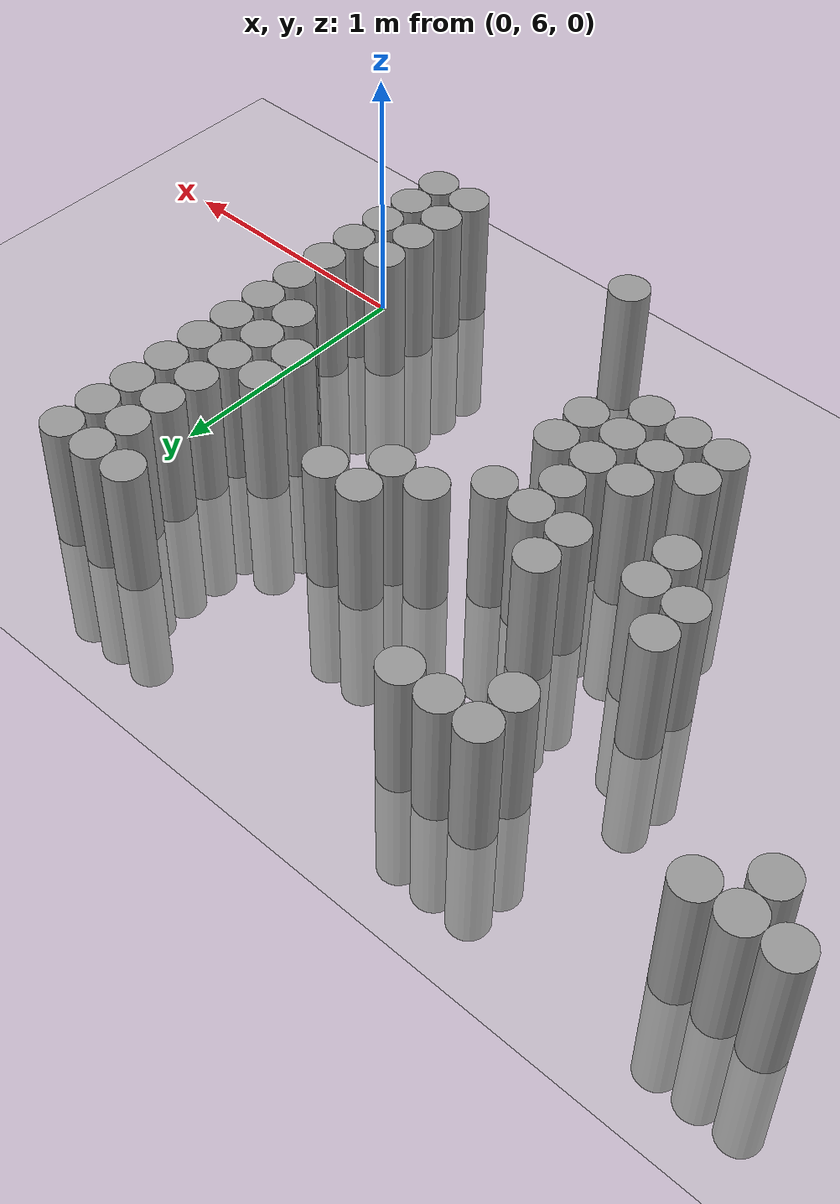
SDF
<sdf version="1.6">
 <world name="default">
  <model name="ground_plane">
   <static>1</static>
   <static>1</static>
   <link name="link">
    <collision name="collision">
     <geometry><plane><normal>0 0 1</normal><size>100 100</size></plane></geometry>
     <surface><friction><ode><mu>100</mu><mu2>50</mu2></ode></friction></surface>
    </collision>
    <visual name="visual">
     <cast_shadows>0</cast_shadows>
     <geometry><plane><normal>0 0 1</normal><size>100 100</size></plane></geometry>
     <material>
      <script><uri>file://media/materials/scripts/gazebo.material</uri><name>Gazebo/Grey</name></script>
     </material>
    </visual>
   </link>
  </model>
  <model name="unit_cylinder_168">
   <static>1</static>
   <pose>-2.925000 7.575000 0.000000 0.000000 0.000000 0.000000</pose>
   <link name="link">
    <inertial>
     <mass>1</mass>
     <inertia><ixx>0.145833</ixx><ixy>0</ixy><ixz>0</ixz><iyy>0.145833</iyy><iyz>0</iyz><izz>0.125</izz></inertia>
    </inertial>
    <collision name="collision">
     <geometry><cylinder><radius>0.075000</radius><length>1</length></cylinder></geometry>
    </collision>
    <visual name="visual">
     <geometry><cylinder><radius>0.075000</radius><length>1</length></cylinder></geometry>
     <material>
      <script><name>Gazebo/Grey</name><uri>file://media/materials/scripts/gazebo.material</uri></script>
     </material>
    </visual>
   </link>
  </model>
  <model name="unit_cylinder_174">
   <static>1</static>
   <pose>-2.775000 7.425000 0.000000 0.000000 0.000000 0.000000</pose>
   <link name="link">
    <inertial>
     <mass>1</mass>
     <inertia><ixx>0.145833</ixx><ixy>0</ixy><ixz>0</ixz><iyy>0.145833</iyy><iyz>0</iyz><izz>0.125</izz></inertia>
    </inertial>
    <collision name="collision">
     <geometry><cylinder><radius>0.075000</radius><length>1</length></cylinder></geometry>
    </collision>
    <visual name="visual">
     <geometry><cylinder><radius>0.075000</radius><length>1</length></cylinder></geometry>
     <material>
      <script><name>Gazebo/Grey</name><uri>file://media/materials/scripts/gazebo.material</uri></script>
     </material>
    </visual>
   </link>
  </model>
  <model name="unit_cylinder_175">
   <static>1</static>
   <pose>-2.775000 7.575000 0.000000 0.000000 0.000000 0.000000</pose>
   <link name="link">
    <inertial>
     <mass>1</mass>
     <inertia><ixx>0.145833</ixx><ixy>0</ixy><ixz>0</ixz><iyy>0.145833</iyy><iyz>0</iyz><izz>0.125</izz></inertia>
    </inertial>
    <collision name="collision">
     <geometry><cylinder><radius>0.075000</radius><length>1</length></cylinder></geometry>
    </collision>
    <visual name="visual">
     <geometry><cylinder><radius>0.075000</radius><length>1</length></cylinder></geometry>
     <material>
      <script><name>Gazebo/Grey</name><uri>file://media/materials/scripts/gazebo.material</uri></script>
     </material>
    </visual>
   </link>
  </model>
  <model name="unit_cylinder_181">
   <static>1</static>
   <pose>-2.625000 7.575000 0.000000 0.000000 0.000000 0.000000</pose>
   <link name="link">
    <inertial>
     <mass>1</mass>
     <inertia><ixx>0.145833</ixx><ixy>0</ixy><ixz>0</ixz><iyy>0.145833</iyy><iyz>0</iyz><izz>0.125</izz></inertia>
    </inertial>
    <collision name="collision">
     <geometry><cylinder><radius>0.075000</radius><length>1</length></cylinder></geometry>
    </collision>
    <visual name="visual">
     <geometry><cylinder><radius>0.075000</radius><length>1</length></cylinder></geometry>
     <material>
      <script><name>Gazebo/Grey</name><uri>file://media/materials/scripts/gazebo.material</uri></script>
     </material>
    </visual>
   </link>
  </model>
  <model name="unit_cylinder_195">
   <static>1</static>
   <pose>-2.025000 6.825000 0.000000 0.000000 0.000000 0.000000</pose>
   <link name="link">
    <inertial>
     <mass>1</mass>
     <inertia><ixx>0.145833</ixx><ixy>0</ixy><ixz>0</ixz><iyy>0.145833</iyy><iyz>0</iyz><izz>0.125</izz></inertia>
    </inertial>
    <collision name="collision">
     <geometry><cylinder><radius>0.075000</radius><length>1</length></cylinder></geometry>
    </collision>
    <visual name="visual">
     <geometry><cylinder><radius>0.075000</radius><length>1</length></cylinder></geometry>
     <material>
      <script><name>Gazebo/Grey</name><uri>file://media/materials/scripts/gazebo.material</uri></script>
     </material>
    </visual>
   </link>
  </model>
  <model name="unit_cylinder_196">
   <static>1</static>
   <pose>-2.025000 6.975000 0.000000 0.000000 0.000000 0.000000</pose>
   <link name="link">
    <inertial>
     <mass>1</mass>
     <inertia><ixx>0.145833</ixx><ixy>0</ixy><ixz>0</ixz><iyy>0.145833</iyy><iyz>0</iyz><izz>0.125</izz></inertia>
    </inertial>
    <collision name="collision">
     <geometry><cylinder><radius>0.075000</radius><length>1</length></cylinder></geometry>
    </collision>
    <visual name="visual">
     <geometry><cylinder><radius>0.075000</radius><length>1</length></cylinder></geometry>
     <material>
      <script><name>Gazebo/Grey</name><uri>file://media/materials/scripts/gazebo.material</uri></script>
     </material>
    </visual>
   </link>
  </model>
  <model name="unit_cylinder_199">
   <static>1</static>
   <pose>-1.875000 6.675000 0.000000 0.000000 0.000000 0.000000</pose>
   <link name="link">
    <inertial>
     <mass>1</mass>
     <inertia><ixx>0.145833</ixx><ixy>0</ixy><ixz>0</ixz><iyy>0.145833</iyy><iyz>0</iyz><izz>0.125</izz></inertia>
    </inertial>
    <collision name="collision">
     <geometry><cylinder><radius>0.075000</radius><length>1</length></cylinder></geometry>
    </collision>
    <visual name="visual">
     <geometry><cylinder><radius>0.075000</radius><length>1</length></cylinder></geometry>
     <material>
      <script><name>Gazebo/Grey</name><uri>file://media/materials/scripts/gazebo.material</uri></script>
     </material>
    </visual>
   </link>
  </model>
  <model name="unit_cylinder_200">
   <static>1</static>
   <pose>-1.875000 6.825000 0.000000 0.000000 0.000000 0.000000</pose>
   <link name="link">
    <inertial>
     <mass>1</mass>
     <inertia><ixx>0.145833</ixx><ixy>0</ixy><ixz>0</ixz><iyy>0.145833</iyy><iyz>0</iyz><izz>0.125</izz></inertia>
    </inertial>
    <collision name="collision">
     <geometry><cylinder><radius>0.075000</radius><length>1</length></cylinder></geometry>
    </collision>
    <visual name="visual">
     <geometry><cylinder><radius>0.075000</radius><length>1</length></cylinder></geometry>
     <material>
      <script><name>Gazebo/Grey</name><uri>file://media/materials/scripts/gazebo.material</uri></script>
     </material>
    </visual>
   </link>
  </model>
  <model name="unit_cylinder_201">
   <static>1</static>
   <pose>-1.875000 7.425000 0.000000 0.000000 0.000000 0.000000</pose>
   <link name="link">
    <inertial>
     <mass>1</mass>
     <inertia><ixx>0.145833</ixx><ixy>0</ixy><ixz>0</ixz><iyy>0.145833</iyy><iyz>0</iyz><izz>0.125</izz></inertia>
    </inertial>
    <collision name="collision">
     <geometry><cylinder><radius>0.075000</radius><length>1</length></cylinder></geometry>
    </collision>
    <visual name="visual">
     <geometry><cylinder><radius>0.075000</radius><length>1</length></cylinder></geometry>
     <material>
      <script><name>Gazebo/Grey</name><uri>file://media/materials/scripts/gazebo.material</uri></script>
     </material>
    </visual>
   </link>
  </model>
  <model name="unit_cylinder_202">
   <static>1</static>
   <pose>-1.875000 7.575000 0.000000 0.000000 0.000000 0.000000</pose>
   <link name="link">
    <inertial>
     <mass>1</mass>
     <inertia><ixx>0.145833</ixx><ixy>0</ixy><ixz>0</ixz><iyy>0.145833</iyy><iyz>0</iyz><izz>0.125</izz></inertia>
    </inertial>
    <collision name="collision">
     <geometry><cylinder><radius>0.075000</radius><length>1</length></cylinder></geometry>
    </collision>
    <visual name="visual">
     <geometry><cylinder><radius>0.075000</radius><length>1</length></cylinder></geometry>
     <material>
      <script><name>Gazebo/Grey</name><uri>file://media/materials/scripts/gazebo.material</uri></script>
     </material>
    </visual>
   </link>
  </model>
  <model name="unit_cylinder_204">
   <static>1</static>
   <pose>-1.725000 6.225000 0.000000 0.000000 0.000000 0.000000</pose>
   <link name="link">
    <inertial>
     <mass>1</mass>
     <inertia><ixx>0.145833</ixx><ixy>0</ixy><ixz>0</ixz><iyy>0.145833</iyy><iyz>0</iyz><izz>0.125</izz></inertia>
    </inertial>
    <collision name="collision">
     <geometry><cylinder><radius>0.075000</radius><length>1</length></cylinder></geometry>
    </collision>
    <visual name="visual">
     <geometry><cylinder><radius>0.075000</radius><length>1</length></cylinder></geometry>
     <material>
      <script><name>Gazebo/Grey</name><uri>file://media/materials/scripts/gazebo.material</uri></script>
     </material>
    </visual>
   </link>
  </model>
  <model name="unit_cylinder_205">
   <static>1</static>
   <pose>-1.725000 6.375000 0.000000 0.000000 0.000000 0.000000</pose>
   <link name="link">
    <inertial>
     <mass>1</mass>
     <inertia><ixx>0.145833</ixx><ixy>0</ixy><ixz>0</ixz><iyy>0.145833</iyy><iyz>0</iyz><izz>0.125</izz></inertia>
    </inertial>
    <collision name="collision">
     <geometry><cylinder><radius>0.075000</radius><length>1</length></cylinder></geometry>
    </collision>
    <visual name="visual">
     <geometry><cylinder><radius>0.075000</radius><length>1</length></cylinder></geometry>
     <material>
      <script><name>Gazebo/Grey</name><uri>file://media/materials/scripts/gazebo.material</uri></script>
     </material>
    </visual>
   </link>
  </model>
  <model name="unit_cylinder_206">
   <static>1</static>
   <pose>-1.725000 7.575000 0.000000 0.000000 0.000000 0.000000</pose>
   <link name="link">
    <inertial>
     <mass>1</mass>
     <inertia><ixx>0.145833</ixx><ixy>0</ixy><ixz>0</ixz><iyy>0.145833</iyy><iyz>0</iyz><izz>0.125</izz></inertia>
    </inertial>
    <collision name="collision">
     <geometry><cylinder><radius>0.075000</radius><length>1</length></cylinder></geometry>
    </collision>
    <visual name="visual">
     <geometry><cylinder><radius>0.075000</radius><length>1</length></cylinder></geometry>
     <material>
      <script><name>Gazebo/Grey</name><uri>file://media/materials/scripts/gazebo.material</uri></script>
     </material>
    </visual>
   </link>
  </model>
  <model name="unit_cylinder_207">
   <static>1</static>
   <pose>-1.575000 6.225000 0.000000 0.000000 0.000000 0.000000</pose>
   <link name="link">
    <inertial>
     <mass>1</mass>
     <inertia><ixx>0.145833</ixx><ixy>0</ixy><ixz>0</ixz><iyy>0.145833</iyy><iyz>0</iyz><izz>0.125</izz></inertia>
    </inertial>
    <collision name="collision">
     <geometry><cylinder><radius>0.075000</radius><length>1</length></cylinder></geometry>
    </collision>
    <visual name="visual">
     <geometry><cylinder><radius>0.075000</radius><length>1</length></cylinder></geometry>
     <material>
      <script><name>Gazebo/Grey</name><uri>file://media/materials/scripts/gazebo.material</uri></script>
     </material>
    </visual>
   </link>
  </model>
  <model name="unit_cylinder_208">
   <static>1</static>
   <pose>-1.575000 6.375000 0.000000 0.000000 0.000000 0.000000</pose>
   <link name="link">
    <inertial>
     <mass>1</mass>
     <inertia><ixx>0.145833</ixx><ixy>0</ixy><ixz>0</ixz><iyy>0.145833</iyy><iyz>0</iyz><izz>0.125</izz></inertia>
    </inertial>
    <collision name="collision">
     <geometry><cylinder><radius>0.075000</radius><length>1</length></cylinder></geometry>
    </collision>
    <visual name="visual">
     <geometry><cylinder><radius>0.075000</radius><length>1</length></cylinder></geometry>
     <material>
      <script><name>Gazebo/Grey</name><uri>file://media/materials/scripts/gazebo.material</uri></script>
     </material>
    </visual>
   </link>
  </model>
  <model name="unit_cylinder_209">
   <static>1</static>
   <pose>-1.575000 6.525000 0.000000 0.000000 0.000000 0.000000</pose>
   <link name="link">
    <inertial>
     <mass>1</mass>
     <inertia><ixx>0.145833</ixx><ixy>0</ixy><ixz>0</ixz><iyy>0.145833</iyy><iyz>0</iyz><izz>0.125</izz></inertia>
    </inertial>
    <collision name="collision">
     <geometry><cylinder><radius>0.075000</radius><length>1</length></cylinder></geometry>
    </collision>
    <visual name="visual">
     <geometry><cylinder><radius>0.075000</radius><length>1</length></cylinder></geometry>
     <material>
      <script><name>Gazebo/Grey</name><uri>file://media/materials/scripts/gazebo.material</uri></script>
     </material>
    </visual>
   </link>
  </model>
  <model name="unit_cylinder_210">
   <static>1</static>
   <pose>-1.575000 6.825000 0.000000 0.000000 0.000000 0.000000</pose>
   <link name="link">
    <inertial>
     <mass>1</mass>
     <inertia><ixx>0.145833</ixx><ixy>0</ixy><ixz>0</ixz><iyy>0.145833</iyy><iyz>0</iyz><izz>0.125</izz></inertia>
    </inertial>
    <collision name="collision">
     <geometry><cylinder><radius>0.075000</radius><length>1</length></cylinder></geometry>
    </collision>
    <visual name="visual">
     <geometry><cylinder><radius>0.075000</radius><length>1</length></cylinder></geometry>
     <material>
      <script><name>Gazebo/Grey</name><uri>file://media/materials/scripts/gazebo.material</uri></script>
     </material>
    </visual>
   </link>
  </model>
  <model name="unit_cylinder_211">
   <static>1</static>
   <pose>-1.575000 6.975000 0.000000 0.000000 0.000000 0.000000</pose>
   <link name="link">
    <inertial>
     <mass>1</mass>
     <inertia><ixx>0.145833</ixx><ixy>0</ixy><ixz>0</ixz><iyy>0.145833</iyy><iyz>0</iyz><izz>0.125</izz></inertia>
    </inertial>
    <collision name="collision">
     <geometry><cylinder><radius>0.075000</radius><length>1</length></cylinder></geometry>
    </collision>
    <visual name="visual">
     <geometry><cylinder><radius>0.075000</radius><length>1</length></cylinder></geometry>
     <material>
      <script><name>Gazebo/Grey</name><uri>file://media/materials/scripts/gazebo.material</uri></script>
     </material>
    </visual>
   </link>
  </model>
  <model name="unit_cylinder_212">
   <static>1</static>
   <pose>-1.575000 7.575000 0.000000 0.000000 0.000000 0.000000</pose>
   <link name="link">
    <inertial>
     <mass>1</mass>
     <inertia><ixx>0.145833</ixx><ixy>0</ixy><ixz>0</ixz><iyy>0.145833</iyy><iyz>0</iyz><izz>0.125</izz></inertia>
    </inertial>
    <collision name="collision">
     <geometry><cylinder><radius>0.075000</radius><length>1</length></cylinder></geometry>
    </collision>
    <visual name="visual">
     <geometry><cylinder><radius>0.075000</radius><length>1</length></cylinder></geometry>
     <material>
      <script><name>Gazebo/Grey</name><uri>file://media/materials/scripts/gazebo.material</uri></script>
     </material>
    </visual>
   </link>
  </model>
  <model name="unit_cylinder_215">
   <static>1</static>
   <pose>-1.425000 6.225000 0.000000 0.000000 0.000000 0.000000</pose>
   <link name="link">
    <inertial>
     <mass>1</mass>
     <inertia><ixx>0.145833</ixx><ixy>0</ixy><ixz>0</ixz><iyy>0.145833</iyy><iyz>0</iyz><izz>0.125</izz></inertia>
    </inertial>
    <collision name="collision">
     <geometry><cylinder><radius>0.075000</radius><length>1</length></cylinder></geometry>
    </collision>
    <visual name="visual">
     <geometry><cylinder><radius>0.075000</radius><length>1</length></cylinder></geometry>
     <material>
      <script><name>Gazebo/Grey</name><uri>file://media/materials/scripts/gazebo.material</uri></script>
     </material>
    </visual>
   </link>
  </model>
  <model name="unit_cylinder_216">
   <static>1</static>
   <pose>-1.425000 6.375000 0.000000 0.000000 0.000000 0.000000</pose>
   <link name="link">
    <inertial>
     <mass>1</mass>
     <inertia><ixx>0.145833</ixx><ixy>0</ixy><ixz>0</ixz><iyy>0.145833</iyy><iyz>0</iyz><izz>0.125</izz></inertia>
    </inertial>
    <collision name="collision">
     <geometry><cylinder><radius>0.075000</radius><length>1</length></cylinder></geometry>
    </collision>
    <visual name="visual">
     <geometry><cylinder><radius>0.075000</radius><length>1</length></cylinder></geometry>
     <material>
      <script><name>Gazebo/Grey</name><uri>file://media/materials/scripts/gazebo.material</uri></script>
     </material>
    </visual>
   </link>
  </model>
  <model name="unit_cylinder_217">
   <static>1</static>
   <pose>-1.425000 6.525000 0.000000 0.000000 0.000000 0.000000</pose>
   <link name="link">
    <inertial>
     <mass>1</mass>
     <inertia><ixx>0.145833</ixx><ixy>0</ixy><ixz>0</ixz><iyy>0.145833</iyy><iyz>0</iyz><izz>0.125</izz></inertia>
    </inertial>
    <collision name="collision">
     <geometry><cylinder><radius>0.075000</radius><length>1</length></cylinder></geometry>
    </collision>
    <visual name="visual">
     <geometry><cylinder><radius>0.075000</radius><length>1</length></cylinder></geometry>
     <material>
      <script><name>Gazebo/Grey</name><uri>file://media/materials/scripts/gazebo.material</uri></script>
     </material>
    </visual>
   </link>
  </model>
  <model name="unit_cylinder_218">
   <static>1</static>
   <pose>-1.425000 6.675000 0.000000 0.000000 0.000000 0.000000</pose>
   <link name="link">
    <inertial>
     <mass>1</mass>
     <inertia><ixx>0.145833</ixx><ixy>0</ixy><ixz>0</ixz><iyy>0.145833</iyy><iyz>0</iyz><izz>0.125</izz></inertia>
    </inertial>
    <collision name="collision">
     <geometry><cylinder><radius>0.075000</radius><length>1</length></cylinder></geometry>
    </collision>
    <visual name="visual">
     <geometry><cylinder><radius>0.075000</radius><length>1</length></cylinder></geometry>
     <material>
      <script><name>Gazebo/Grey</name><uri>file://media/materials/scripts/gazebo.material</uri></script>
     </material>
    </visual>
   </link>
  </model>
  <model name="unit_cylinder_219">
   <static>1</static>
   <pose>-1.425000 6.825000 0.000000 0.000000 0.000000 0.000000</pose>
   <link name="link">
    <inertial>
     <mass>1</mass>
     <inertia><ixx>0.145833</ixx><ixy>0</ixy><ixz>0</ixz><iyy>0.145833</iyy><iyz>0</iyz><izz>0.125</izz></inertia>
    </inertial>
    <collision name="collision">
     <geometry><cylinder><radius>0.075000</radius><length>1</length></cylinder></geometry>
    </collision>
    <visual name="visual">
     <geometry><cylinder><radius>0.075000</radius><length>1</length></cylinder></geometry>
     <material>
      <script><name>Gazebo/Grey</name><uri>file://media/materials/scripts/gazebo.material</uri></script>
     </material>
    </visual>
   </link>
  </model>
  <model name="unit_cylinder_222">
   <static>1</static>
   <pose>-1.275000 6.375000 0.000000 0.000000 0.000000 0.000000</pose>
   <link name="link">
    <inertial>
     <mass>1</mass>
     <inertia><ixx>0.145833</ixx><ixy>0</ixy><ixz>0</ixz><iyy>0.145833</iyy><iyz>0</iyz><izz>0.125</izz></inertia>
    </inertial>
    <collision name="collision">
     <geometry><cylinder><radius>0.075000</radius><length>1</length></cylinder></geometry>
    </collision>
    <visual name="visual">
     <geometry><cylinder><radius>0.075000</radius><length>1</length></cylinder></geometry>
     <material>
      <script><name>Gazebo/Grey</name><uri>file://media/materials/scripts/gazebo.material</uri></script>
     </material>
    </visual>
   </link>
  </model>
  <model name="unit_cylinder_223">
   <static>1</static>
   <pose>-1.275000 6.525000 0.000000 0.000000 0.000000 0.000000</pose>
   <link name="link">
    <inertial>
     <mass>1</mass>
     <inertia><ixx>0.145833</ixx><ixy>0</ixy><ixz>0</ixz><iyy>0.145833</iyy><iyz>0</iyz><izz>0.125</izz></inertia>
    </inertial>
    <collision name="collision">
     <geometry><cylinder><radius>0.075000</radius><length>1</length></cylinder></geometry>
    </collision>
    <visual name="visual">
     <geometry><cylinder><radius>0.075000</radius><length>1</length></cylinder></geometry>
     <material>
      <script><name>Gazebo/Grey</name><uri>file://media/materials/scripts/gazebo.material</uri></script>
     </material>
    </visual>
   </link>
  </model>
  <model name="unit_cylinder_224">
   <static>1</static>
   <pose>-1.275000 6.825000 0.000000 0.000000 0.000000 0.000000</pose>
   <link name="link">
    <inertial>
     <mass>1</mass>
     <inertia><ixx>0.145833</ixx><ixy>0</ixy><ixz>0</ixz><iyy>0.145833</iyy><iyz>0</iyz><izz>0.125</izz></inertia>
    </inertial>
    <collision name="collision">
     <geometry><cylinder><radius>0.075000</radius><length>1</length></cylinder></geometry>
    </collision>
    <visual name="visual">
     <geometry><cylinder><radius>0.075000</radius><length>1</length></cylinder></geometry>
     <material>
      <script><name>Gazebo/Grey</name><uri>file://media/materials/scripts/gazebo.material</uri></script>
     </material>
    </visual>
   </link>
  </model>
  <model name="unit_cylinder_228">
   <static>1</static>
   <pose>-1.125000 6.975000 0.000000 0.000000 0.000000 0.000000</pose>
   <link name="link">
    <inertial>
     <mass>1</mass>
     <inertia><ixx>0.145833</ixx><ixy>0</ixy><ixz>0</ixz><iyy>0.145833</iyy><iyz>0</iyz><izz>0.125</izz></inertia>
    </inertial>
    <collision name="collision">
     <geometry><cylinder><radius>0.075000</radius><length>1</length></cylinder></geometry>
    </collision>
    <visual name="visual">
     <geometry><cylinder><radius>0.075000</radius><length>1</length></cylinder></geometry>
     <material>
      <script><name>Gazebo/Grey</name><uri>file://media/materials/scripts/gazebo.material</uri></script>
     </material>
    </visual>
   </link>
  </model>
  <model name="unit_cylinder_231">
   <static>1</static>
   <pose>-0.975000 5.775000 0.000000 0.000000 0.000000 0.000000</pose>
   <link name="link">
    <inertial>
     <mass>1</mass>
     <inertia><ixx>0.145833</ixx><ixy>0</ixy><ixz>0</ixz><iyy>0.145833</iyy><iyz>0</iyz><izz>0.125</izz></inertia>
    </inertial>
    <collision name="collision">
     <geometry><cylinder><radius>0.075000</radius><length>1</length></cylinder></geometry>
    </collision>
    <visual name="visual">
     <geometry><cylinder><radius>0.075000</radius><length>1</length></cylinder></geometry>
     <material>
      <script><name>Gazebo/Grey</name><uri>file://media/materials/scripts/gazebo.material</uri></script>
     </material>
    </visual>
   </link>
  </model>
  <model name="unit_cylinder_232">
   <static>1</static>
   <pose>-0.975000 6.975000 0.000000 0.000000 0.000000 0.000000</pose>
   <link name="link">
    <inertial>
     <mass>1</mass>
     <inertia><ixx>0.145833</ixx><ixy>0</ixy><ixz>0</ixz><iyy>0.145833</iyy><iyz>0</iyz><izz>0.125</izz></inertia>
    </inertial>
    <collision name="collision">
     <geometry><cylinder><radius>0.075000</radius><length>1</length></cylinder></geometry>
    </collision>
    <visual name="visual">
     <geometry><cylinder><radius>0.075000</radius><length>1</length></cylinder></geometry>
     <material>
      <script><name>Gazebo/Grey</name><uri>file://media/materials/scripts/gazebo.material</uri></script>
     </material>
    </visual>
   </link>
  </model>
  <model name="unit_cylinder_233">
   <static>1</static>
   <pose>-0.975000 7.125000 0.000000 0.000000 0.000000 0.000000</pose>
   <link name="link">
    <inertial>
     <mass>1</mass>
     <inertia><ixx>0.145833</ixx><ixy>0</ixy><ixz>0</ixz><iyy>0.145833</iyy><iyz>0</iyz><izz>0.125</izz></inertia>
    </inertial>
    <collision name="collision">
     <geometry><cylinder><radius>0.075000</radius><length>1</length></cylinder></geometry>
    </collision>
    <visual name="visual">
     <geometry><cylinder><radius>0.075000</radius><length>1</length></cylinder></geometry>
     <material>
      <script><name>Gazebo/Grey</name><uri>file://media/materials/scripts/gazebo.material</uri></script>
     </material>
    </visual>
   </link>
  </model>
  <model name="unit_cylinder_234">
   <static>1</static>
   <pose>-0.825000 7.125000 0.000000 0.000000 0.000000 0.000000</pose>
   <link name="link">
    <inertial>
     <mass>1</mass>
     <inertia><ixx>0.145833</ixx><ixy>0</ixy><ixz>0</ixz><iyy>0.145833</iyy><iyz>0</iyz><izz>0.125</izz></inertia>
    </inertial>
    <collision name="collision">
     <geometry><cylinder><radius>0.075000</radius><length>1</length></cylinder></geometry>
    </collision>
    <visual name="visual">
     <geometry><cylinder><radius>0.075000</radius><length>1</length></cylinder></geometry>
     <material>
      <script><name>Gazebo/Grey</name><uri>file://media/materials/scripts/gazebo.material</uri></script>
     </material>
    </visual>
   </link>
  </model>
  <model name="unit_cylinder_245">
   <static>1</static>
   <pose>-0.375000 6.825000 0.000000 0.000000 0.000000 0.000000</pose>
   <link name="link">
    <inertial>
     <mass>1</mass>
     <inertia><ixx>0.145833</ixx><ixy>0</ixy><ixz>0</ixz><iyy>0.145833</iyy><iyz>0</iyz><izz>0.125</izz></inertia>
    </inertial>
    <collision name="collision">
     <geometry><cylinder><radius>0.075000</radius><length>1</length></cylinder></geometry>
    </collision>
    <visual name="visual">
     <geometry><cylinder><radius>0.075000</radius><length>1</length></cylinder></geometry>
     <material>
      <script><name>Gazebo/Grey</name><uri>file://media/materials/scripts/gazebo.material</uri></script>
     </material>
    </visual>
   </link>
  </model>
  <model name="unit_cylinder_246">
   <static>1</static>
   <pose>-0.375000 6.975000 0.000000 0.000000 0.000000 0.000000</pose>
   <link name="link">
    <inertial>
     <mass>1</mass>
     <inertia><ixx>0.145833</ixx><ixy>0</ixy><ixz>0</ixz><iyy>0.145833</iyy><iyz>0</iyz><izz>0.125</izz></inertia>
    </inertial>
    <collision name="collision">
     <geometry><cylinder><radius>0.075000</radius><length>1</length></cylinder></geometry>
    </collision>
    <visual name="visual">
     <geometry><cylinder><radius>0.075000</radius><length>1</length></cylinder></geometry>
     <material>
      <script><name>Gazebo/Grey</name><uri>file://media/materials/scripts/gazebo.material</uri></script>
     </material>
    </visual>
   </link>
  </model>
  <model name="unit_cylinder_247">
   <static>1</static>
   <pose>-0.375000 7.575000 0.000000 0.000000 0.000000 0.000000</pose>
   <link name="link">
    <inertial>
     <mass>1</mass>
     <inertia><ixx>0.145833</ixx><ixy>0</ixy><ixz>0</ixz><iyy>0.145833</iyy><iyz>0</iyz><izz>0.125</izz></inertia>
    </inertial>
    <collision name="collision">
     <geometry><cylinder><radius>0.075000</radius><length>1</length></cylinder></geometry>
    </collision>
    <visual name="visual">
     <geometry><cylinder><radius>0.075000</radius><length>1</length></cylinder></geometry>
     <material>
      <script><name>Gazebo/Grey</name><uri>file://media/materials/scripts/gazebo.material</uri></script>
     </material>
    </visual>
   </link>
  </model>
  <model name="unit_cylinder_255">
   <static>1</static>
   <pose>-0.225000 5.775000 0.000000 0.000000 0.000000 0.000000</pose>
   <link name="link">
    <inertial>
     <mass>1</mass>
     <inertia><ixx>0.145833</ixx><ixy>0</ixy><ixz>0</ixz><iyy>0.145833</iyy><iyz>0</iyz><izz>0.125</izz></inertia>
    </inertial>
    <collision name="collision">
     <geometry><cylinder><radius>0.075000</radius><length>1</length></cylinder></geometry>
    </collision>
    <visual name="visual">
     <geometry><cylinder><radius>0.075000</radius><length>1</length></cylinder></geometry>
     <material>
      <script><name>Gazebo/Grey</name><uri>file://media/materials/scripts/gazebo.material</uri></script>
     </material>
    </visual>
   </link>
  </model>
  <model name="unit_cylinder_256">
   <static>1</static>
   <pose>-0.225000 5.925000 0.000000 0.000000 0.000000 0.000000</pose>
   <link name="link">
    <inertial>
     <mass>1</mass>
     <inertia><ixx>0.145833</ixx><ixy>0</ixy><ixz>0</ixz><iyy>0.145833</iyy><iyz>0</iyz><izz>0.125</izz></inertia>
    </inertial>
    <collision name="collision">
     <geometry><cylinder><radius>0.075000</radius><length>1</length></cylinder></geometry>
    </collision>
    <visual name="visual">
     <geometry><cylinder><radius>0.075000</radius><length>1</length></cylinder></geometry>
     <material>
      <script><name>Gazebo/Grey</name><uri>file://media/materials/scripts/gazebo.material</uri></script>
     </material>
    </visual>
   </link>
  </model>
  <model name="unit_cylinder_257">
   <static>1</static>
   <pose>-0.225000 6.075000 0.000000 0.000000 0.000000 0.000000</pose>
   <link name="link">
    <inertial>
     <mass>1</mass>
     <inertia><ixx>0.145833</ixx><ixy>0</ixy><ixz>0</ixz><iyy>0.145833</iyy><iyz>0</iyz><izz>0.125</izz></inertia>
    </inertial>
    <collision name="collision">
     <geometry><cylinder><radius>0.075000</radius><length>1</length></cylinder></geometry>
    </collision>
    <visual name="visual">
     <geometry><cylinder><radius>0.075000</radius><length>1</length></cylinder></geometry>
     <material>
      <script><name>Gazebo/Grey</name><uri>file://media/materials/scripts/gazebo.material</uri></script>
     </material>
    </visual>
   </link>
  </model>
  <model name="unit_cylinder_258">
   <static>1</static>
   <pose>-0.225000 6.225000 0.000000 0.000000 0.000000 0.000000</pose>
   <link name="link">
    <inertial>
     <mass>1</mass>
     <inertia><ixx>0.145833</ixx><ixy>0</ixy><ixz>0</ixz><iyy>0.145833</iyy><iyz>0</iyz><izz>0.125</izz></inertia>
    </inertial>
    <collision name="collision">
     <geometry><cylinder><radius>0.075000</radius><length>1</length></cylinder></geometry>
    </collision>
    <visual name="visual">
     <geometry><cylinder><radius>0.075000</radius><length>1</length></cylinder></geometry>
     <material>
      <script><name>Gazebo/Grey</name><uri>file://media/materials/scripts/gazebo.material</uri></script>
     </material>
    </visual>
   </link>
  </model>
  <model name="unit_cylinder_259">
   <static>1</static>
   <pose>-0.225000 6.675000 0.000000 0.000000 0.000000 0.000000</pose>
   <link name="link">
    <inertial>
     <mass>1</mass>
     <inertia><ixx>0.145833</ixx><ixy>0</ixy><ixz>0</ixz><iyy>0.145833</iyy><iyz>0</iyz><izz>0.125</izz></inertia>
    </inertial>
    <collision name="collision">
     <geometry><cylinder><radius>0.075000</radius><length>1</length></cylinder></geometry>
    </collision>
    <visual name="visual">
     <geometry><cylinder><radius>0.075000</radius><length>1</length></cylinder></geometry>
     <material>
      <script><name>Gazebo/Grey</name><uri>file://media/materials/scripts/gazebo.material</uri></script>
     </material>
    </visual>
   </link>
  </model>
  <model name="unit_cylinder_260">
   <static>1</static>
   <pose>-0.225000 6.825000 0.000000 0.000000 0.000000 0.000000</pose>
   <link name="link">
    <inertial>
     <mass>1</mass>
     <inertia><ixx>0.145833</ixx><ixy>0</ixy><ixz>0</ixz><iyy>0.145833</iyy><iyz>0</iyz><izz>0.125</izz></inertia>
    </inertial>
    <collision name="collision">
     <geometry><cylinder><radius>0.075000</radius><length>1</length></cylinder></geometry>
    </collision>
    <visual name="visual">
     <geometry><cylinder><radius>0.075000</radius><length>1</length></cylinder></geometry>
     <material>
      <script><name>Gazebo/Grey</name><uri>file://media/materials/scripts/gazebo.material</uri></script>
     </material>
    </visual>
   </link>
  </model>
  <model name="unit_cylinder_261">
   <static>1</static>
   <pose>-0.225000 6.975000 0.000000 0.000000 0.000000 0.000000</pose>
   <link name="link">
    <inertial>
     <mass>1</mass>
     <inertia><ixx>0.145833</ixx><ixy>0</ixy><ixz>0</ixz><iyy>0.145833</iyy><iyz>0</iyz><izz>0.125</izz></inertia>
    </inertial>
    <collision name="collision">
     <geometry><cylinder><radius>0.075000</radius><length>1</length></cylinder></geometry>
    </collision>
    <visual name="visual">
     <geometry><cylinder><radius>0.075000</radius><length>1</length></cylinder></geometry>
     <material>
      <script><name>Gazebo/Grey</name><uri>file://media/materials/scripts/gazebo.material</uri></script>
     </material>
    </visual>
   </link>
  </model>
  <model name="unit_cylinder_262">
   <static>1</static>
   <pose>-0.225000 7.125000 0.000000 0.000000 0.000000 0.000000</pose>
   <link name="link">
    <inertial>
     <mass>1</mass>
     <inertia><ixx>0.145833</ixx><ixy>0</ixy><ixz>0</ixz><iyy>0.145833</iyy><iyz>0</iyz><izz>0.125</izz></inertia>
    </inertial>
    <collision name="collision">
     <geometry><cylinder><radius>0.075000</radius><length>1</length></cylinder></geometry>
    </collision>
    <visual name="visual">
     <geometry><cylinder><radius>0.075000</radius><length>1</length></cylinder></geometry>
     <material>
      <script><name>Gazebo/Grey</name><uri>file://media/materials/scripts/gazebo.material</uri></script>
     </material>
    </visual>
   </link>
  </model>
  <model name="unit_cylinder_263">
   <static>1</static>
   <pose>-0.225000 7.275000 0.000000 0.000000 0.000000 0.000000</pose>
   <link name="link">
    <inertial>
     <mass>1</mass>
     <inertia><ixx>0.145833</ixx><ixy>0</ixy><ixz>0</ixz><iyy>0.145833</iyy><iyz>0</iyz><izz>0.125</izz></inertia>
    </inertial>
    <collision name="collision">
     <geometry><cylinder><radius>0.075000</radius><length>1</length></cylinder></geometry>
    </collision>
    <visual name="visual">
     <geometry><cylinder><radius>0.075000</radius><length>1</length></cylinder></geometry>
     <material>
      <script><name>Gazebo/Grey</name><uri>file://media/materials/scripts/gazebo.material</uri></script>
     </material>
    </visual>
   </link>
  </model>
  <model name="unit_cylinder_264">
   <static>1</static>
   <pose>-0.225000 7.425000 0.000000 0.000000 0.000000 0.000000</pose>
   <link name="link">
    <inertial>
     <mass>1</mass>
     <inertia><ixx>0.145833</ixx><ixy>0</ixy><ixz>0</ixz><iyy>0.145833</iyy><iyz>0</iyz><izz>0.125</izz></inertia>
    </inertial>
    <collision name="collision">
     <geometry><cylinder><radius>0.075000</radius><length>1</length></cylinder></geometry>
    </collision>
    <visual name="visual">
     <geometry><cylinder><radius>0.075000</radius><length>1</length></cylinder></geometry>
     <material>
      <script><name>Gazebo/Grey</name><uri>file://media/materials/scripts/gazebo.material</uri></script>
     </material>
    </visual>
   </link>
  </model>
  <model name="unit_cylinder_265">
   <static>1</static>
   <pose>-0.225000 7.575000 0.000000 0.000000 0.000000 0.000000</pose>
   <link name="link">
    <inertial>
     <mass>1</mass>
     <inertia><ixx>0.145833</ixx><ixy>0</ixy><ixz>0</ixz><iyy>0.145833</iyy><iyz>0</iyz><izz>0.125</izz></inertia>
    </inertial>
    <collision name="collision">
     <geometry><cylinder><radius>0.075000</radius><length>1</length></cylinder></geometry>
    </collision>
    <visual name="visual">
     <geometry><cylinder><radius>0.075000</radius><length>1</length></cylinder></geometry>
     <material>
      <script><name>Gazebo/Grey</name><uri>file://media/materials/scripts/gazebo.material</uri></script>
     </material>
    </visual>
   </link>
  </model>
  <model name="unit_cylinder_273">
   <static>1</static>
   <pose>-0.075000 5.775000 0.000000 0.000000 0.000000 0.000000</pose>
   <link name="link">
    <inertial>
     <mass>1</mass>
     <inertia><ixx>0.145833</ixx><ixy>0</ixy><ixz>0</ixz><iyy>0.145833</iyy><iyz>0</iyz><izz>0.125</izz></inertia>
    </inertial>
    <collision name="collision">
     <geometry><cylinder><radius>0.075000</radius><length>1</length></cylinder></geometry>
    </collision>
    <visual name="visual">
     <geometry><cylinder><radius>0.075000</radius><length>1</length></cylinder></geometry>
     <material>
      <script><name>Gazebo/Grey</name><uri>file://media/materials/scripts/gazebo.material</uri></script>
     </material>
    </visual>
   </link>
  </model>
  <model name="unit_cylinder_274">
   <static>1</static>
   <pose>-0.075000 5.925000 0.000000 0.000000 0.000000 0.000000</pose>
   <link name="link">
    <inertial>
     <mass>1</mass>
     <inertia><ixx>0.145833</ixx><ixy>0</ixy><ixz>0</ixz><iyy>0.145833</iyy><iyz>0</iyz><izz>0.125</izz></inertia>
    </inertial>
    <collision name="collision">
     <geometry><cylinder><radius>0.075000</radius><length>1</length></cylinder></geometry>
    </collision>
    <visual name="visual">
     <geometry><cylinder><radius>0.075000</radius><length>1</length></cylinder></geometry>
     <material>
      <script><name>Gazebo/Grey</name><uri>file://media/materials/scripts/gazebo.material</uri></script>
     </material>
    </visual>
   </link>
  </model>
  <model name="unit_cylinder_275">
   <static>1</static>
   <pose>-0.075000 6.075000 0.000000 0.000000 0.000000 0.000000</pose>
   <link name="link">
    <inertial>
     <mass>1</mass>
     <inertia><ixx>0.145833</ixx><ixy>0</ixy><ixz>0</ixz><iyy>0.145833</iyy><iyz>0</iyz><izz>0.125</izz></inertia>
    </inertial>
    <collision name="collision">
     <geometry><cylinder><radius>0.075000</radius><length>1</length></cylinder></geometry>
    </collision>
    <visual name="visual">
     <geometry><cylinder><radius>0.075000</radius><length>1</length></cylinder></geometry>
     <material>
      <script><name>Gazebo/Grey</name><uri>file://media/materials/scripts/gazebo.material</uri></script>
     </material>
    </visual>
   </link>
  </model>
  <model name="unit_cylinder_276">
   <static>1</static>
   <pose>-0.075000 6.225000 0.000000 0.000000 0.000000 0.000000</pose>
   <link name="link">
    <inertial>
     <mass>1</mass>
     <inertia><ixx>0.145833</ixx><ixy>0</ixy><ixz>0</ixz><iyy>0.145833</iyy><iyz>0</iyz><izz>0.125</izz></inertia>
    </inertial>
    <collision name="collision">
     <geometry><cylinder><radius>0.075000</radius><length>1</length></cylinder></geometry>
    </collision>
    <visual name="visual">
     <geometry><cylinder><radius>0.075000</radius><length>1</length></cylinder></geometry>
     <material>
      <script><name>Gazebo/Grey</name><uri>file://media/materials/scripts/gazebo.material</uri></script>
     </material>
    </visual>
   </link>
  </model>
  <model name="unit_cylinder_277">
   <static>1</static>
   <pose>-0.075000 6.375000 0.000000 0.000000 0.000000 0.000000</pose>
   <link name="link">
    <inertial>
     <mass>1</mass>
     <inertia><ixx>0.145833</ixx><ixy>0</ixy><ixz>0</ixz><iyy>0.145833</iyy><iyz>0</iyz><izz>0.125</izz></inertia>
    </inertial>
    <collision name="collision">
     <geometry><cylinder><radius>0.075000</radius><length>1</length></cylinder></geometry>
    </collision>
    <visual name="visual">
     <geometry><cylinder><radius>0.075000</radius><length>1</length></cylinder></geometry>
     <material>
      <script><name>Gazebo/Grey</name><uri>file://media/materials/scripts/gazebo.material</uri></script>
     </material>
    </visual>
   </link>
  </model>
  <model name="unit_cylinder_278">
   <static>1</static>
   <pose>-0.075000 6.525000 0.000000 0.000000 0.000000 0.000000</pose>
   <link name="link">
    <inertial>
     <mass>1</mass>
     <inertia><ixx>0.145833</ixx><ixy>0</ixy><ixz>0</ixz><iyy>0.145833</iyy><iyz>0</iyz><izz>0.125</izz></inertia>
    </inertial>
    <collision name="collision">
     <geometry><cylinder><radius>0.075000</radius><length>1</length></cylinder></geometry>
    </collision>
    <visual name="visual">
     <geometry><cylinder><radius>0.075000</radius><length>1</length></cylinder></geometry>
     <material>
      <script><name>Gazebo/Grey</name><uri>file://media/materials/scripts/gazebo.material</uri></script>
     </material>
    </visual>
   </link>
  </model>
  <model name="unit_cylinder_279">
   <static>1</static>
   <pose>-0.075000 6.675000 0.000000 0.000000 0.000000 0.000000</pose>
   <link name="link">
    <inertial>
     <mass>1</mass>
     <inertia><ixx>0.145833</ixx><ixy>0</ixy><ixz>0</ixz><iyy>0.145833</iyy><iyz>0</iyz><izz>0.125</izz></inertia>
    </inertial>
    <collision name="collision">
     <geometry><cylinder><radius>0.075000</radius><length>1</length></cylinder></geometry>
    </collision>
    <visual name="visual">
     <geometry><cylinder><radius>0.075000</radius><length>1</length></cylinder></geometry>
     <material>
      <script><name>Gazebo/Grey</name><uri>file://media/materials/scripts/gazebo.material</uri></script>
     </material>
    </visual>
   </link>
  </model>
  <model name="unit_cylinder_280">
   <static>1</static>
   <pose>-0.075000 6.825000 0.000000 0.000000 0.000000 0.000000</pose>
   <link name="link">
    <inertial>
     <mass>1</mass>
     <inertia><ixx>0.145833</ixx><ixy>0</ixy><ixz>0</ixz><iyy>0.145833</iyy><iyz>0</iyz><izz>0.125</izz></inertia>
    </inertial>
    <collision name="collision">
     <geometry><cylinder><radius>0.075000</radius><length>1</length></cylinder></geometry>
    </collision>
    <visual name="visual">
     <geometry><cylinder><radius>0.075000</radius><length>1</length></cylinder></geometry>
     <material>
      <script><name>Gazebo/Grey</name><uri>file://media/materials/scripts/gazebo.material</uri></script>
     </material>
    </visual>
   </link>
  </model>
  <model name="unit_cylinder_281">
   <static>1</static>
   <pose>-0.075000 6.975000 0.000000 0.000000 0.000000 0.000000</pose>
   <link name="link">
    <inertial>
     <mass>1</mass>
     <inertia><ixx>0.145833</ixx><ixy>0</ixy><ixz>0</ixz><iyy>0.145833</iyy><iyz>0</iyz><izz>0.125</izz></inertia>
    </inertial>
    <collision name="collision">
     <geometry><cylinder><radius>0.075000</radius><length>1</length></cylinder></geometry>
    </collision>
    <visual name="visual">
     <geometry><cylinder><radius>0.075000</radius><length>1</length></cylinder></geometry>
     <material>
      <script><name>Gazebo/Grey</name><uri>file://media/materials/scripts/gazebo.material</uri></script>
     </material>
    </visual>
   </link>
  </model>
  <model name="unit_cylinder_282">
   <static>1</static>
   <pose>-0.075000 7.125000 0.000000 0.000000 0.000000 0.000000</pose>
   <link name="link">
    <inertial>
     <mass>1</mass>
     <inertia><ixx>0.145833</ixx><ixy>0</ixy><ixz>0</ixz><iyy>0.145833</iyy><iyz>0</iyz><izz>0.125</izz></inertia>
    </inertial>
    <collision name="collision">
     <geometry><cylinder><radius>0.075000</radius><length>1</length></cylinder></geometry>
    </collision>
    <visual name="visual">
     <geometry><cylinder><radius>0.075000</radius><length>1</length></cylinder></geometry>
     <material>
      <script><name>Gazebo/Grey</name><uri>file://media/materials/scripts/gazebo.material</uri></script>
     </material>
    </visual>
   </link>
  </model>
  <model name="unit_cylinder_283">
   <static>1</static>
   <pose>-0.075000 7.275000 0.000000 0.000000 0.000000 0.000000</pose>
   <link name="link">
    <inertial>
     <mass>1</mass>
     <inertia><ixx>0.145833</ixx><ixy>0</ixy><ixz>0</ixz><iyy>0.145833</iyy><iyz>0</iyz><izz>0.125</izz></inertia>
    </inertial>
    <collision name="collision">
     <geometry><cylinder><radius>0.075000</radius><length>1</length></cylinder></geometry>
    </collision>
    <visual name="visual">
     <geometry><cylinder><radius>0.075000</radius><length>1</length></cylinder></geometry>
     <material>
      <script><name>Gazebo/Grey</name><uri>file://media/materials/scripts/gazebo.material</uri></script>
     </material>
    </visual>
   </link>
  </model>
  <model name="unit_cylinder_284">
   <static>1</static>
   <pose>-0.075000 7.425000 0.000000 0.000000 0.000000 0.000000</pose>
   <link name="link">
    <inertial>
     <mass>1</mass>
     <inertia><ixx>0.145833</ixx><ixy>0</ixy><ixz>0</ixz><iyy>0.145833</iyy><iyz>0</iyz><izz>0.125</izz></inertia>
    </inertial>
    <collision name="collision">
     <geometry><cylinder><radius>0.075000</radius><length>1</length></cylinder></geometry>
    </collision>
    <visual name="visual">
     <geometry><cylinder><radius>0.075000</radius><length>1</length></cylinder></geometry>
     <material>
      <script><name>Gazebo/Grey</name><uri>file://media/materials/scripts/gazebo.material</uri></script>
     </material>
    </visual>
   </link>
  </model>
  <model name="unit_cylinder_285">
   <static>1</static>
   <pose>-0.075000 7.575000 0.000000 0.000000 0.000000 0.000000</pose>
   <link name="link">
    <inertial>
     <mass>1</mass>
     <inertia><ixx>0.145833</ixx><ixy>0</ixy><ixz>0</ixz><iyy>0.145833</iyy><iyz>0</iyz><izz>0.125</izz></inertia>
    </inertial>
    <collision name="collision">
     <geometry><cylinder><radius>0.075000</radius><length>1</length></cylinder></geometry>
    </collision>
    <visual name="visual">
     <geometry><cylinder><radius>0.075000</radius><length>1</length></cylinder></geometry>
     <material>
      <script><name>Gazebo/Grey</name><uri>file://media/materials/scripts/gazebo.material</uri></script>
     </material>
    </visual>
   </link>
  </model>
 </world>
</sdf>
